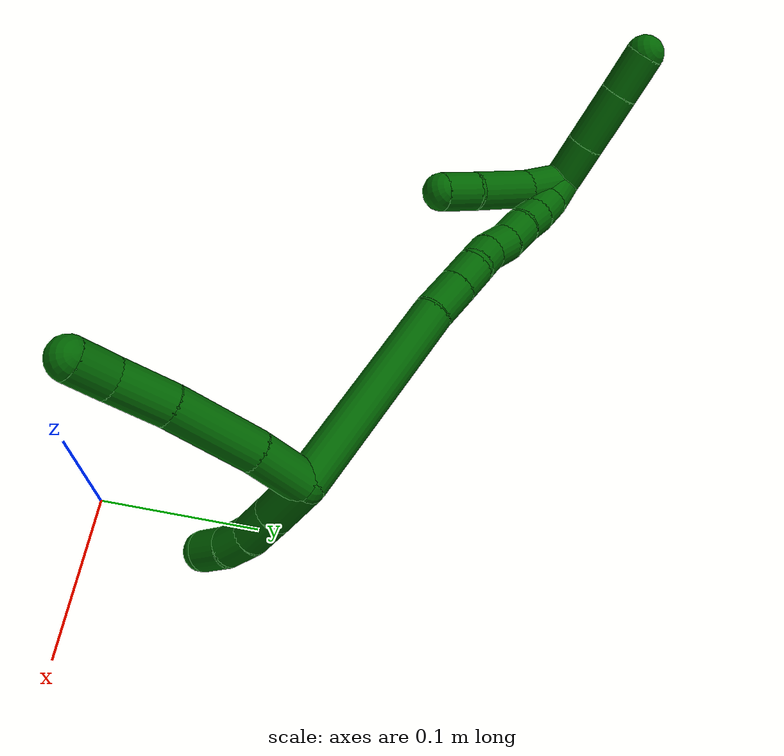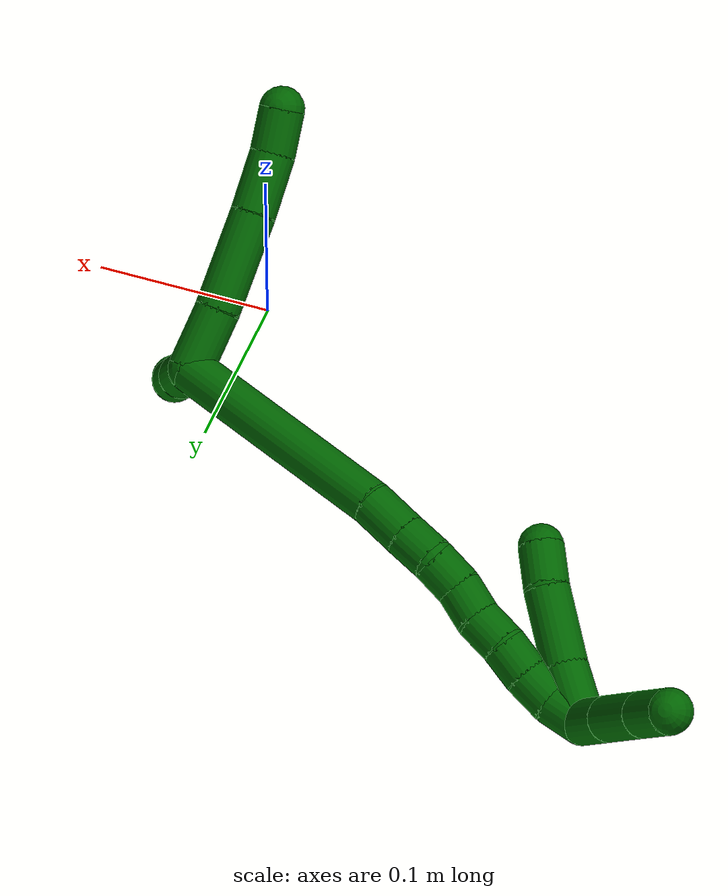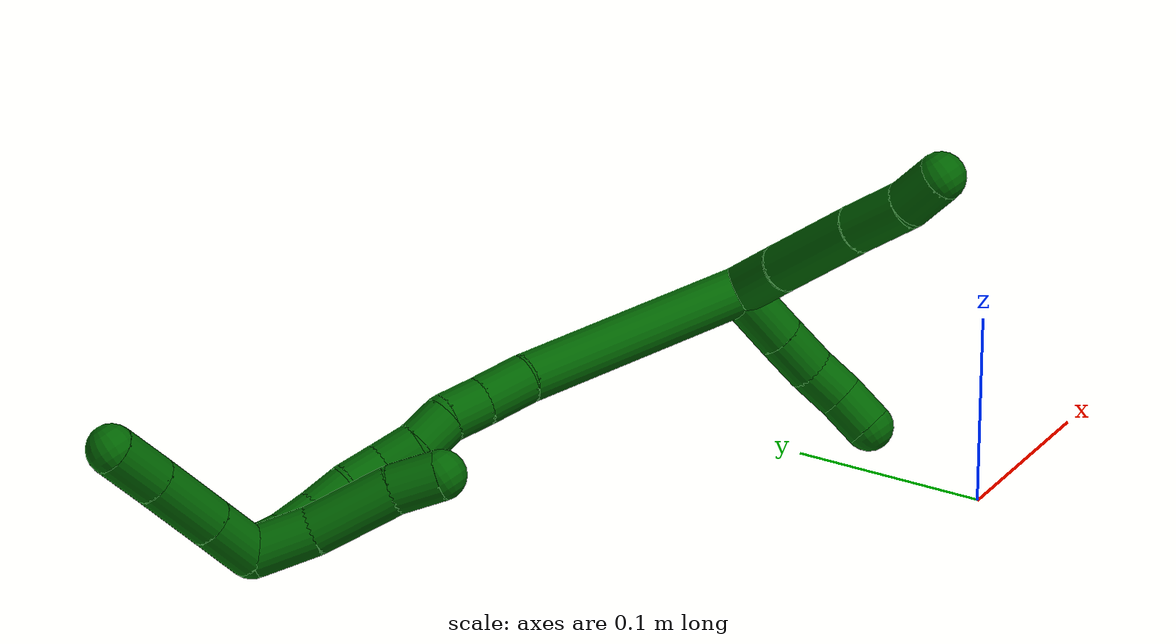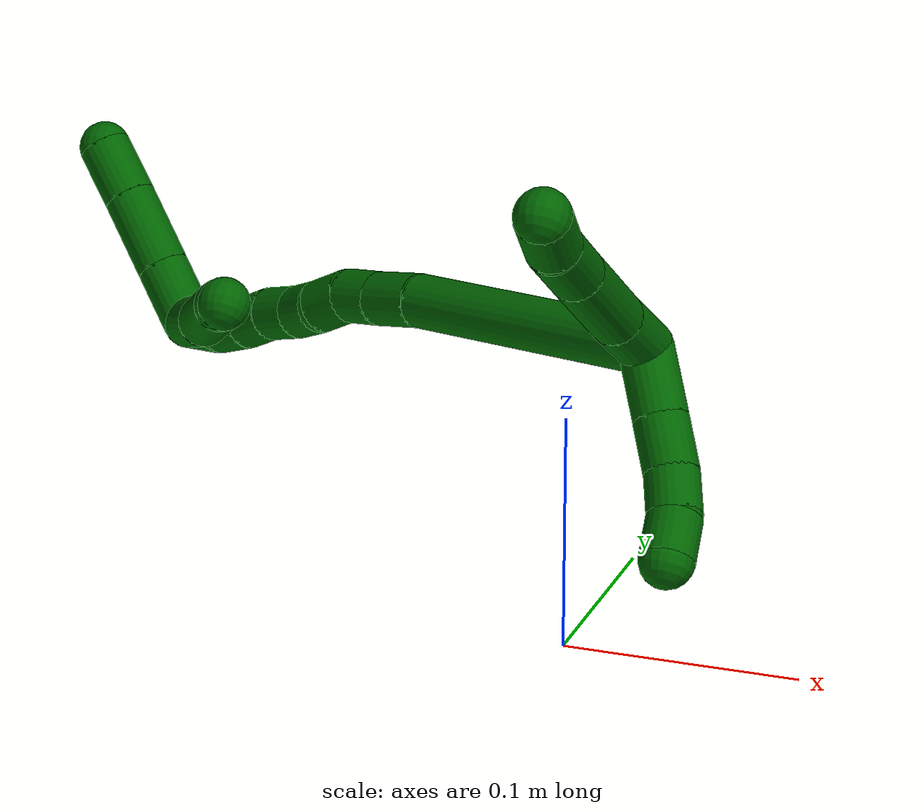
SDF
<sdf version="1.7">
 <world name="default">
  <model name="6">
   <static>0</static>
   <link name="6">
    <collision name="collision-cylinder-e_1_2_8">
     <pose>-0.002788 -0.017363 -0.000583 1.60438 -0.15912 -0.164531</pose>
     <geometry><cylinder><radius>0.0125</radius><length>0.035191</length></cylinder></geometry>
     <surface>
      <friction><ode><mu>1.16</mu><mu2>1.16</mu2><slip1>0</slip1><slip2>0</slip2></ode></friction>
      <contact><ode><kp>1e+06</kp><kd>1</kd><max_vel>0</max_vel><min_depth>0.001</min_depth></ode></contact>
     </surface>
    </collision>
    <visual name="visual-cylinder-e_1_2_8">
     <pose>-0.002788 -0.017363 -0.000583 1.60438 -0.15912 -0.164531</pose>
     <geometry><cylinder><radius>0.0125</radius><length>0.035191</length></cylinder></geometry>
     <material><ambient>0 0.392157 0.003922 1</ambient></material>
    </visual>
    <collision name="collision-cylinder-e_2_8_9">
     <pose>-0.007793 -0.062222 -0.00247 1.61818 -0.080369 -0.084265</pose>
     <geometry><cylinder><radius>0.0125</radius><length>0.05523</length></cylinder></geometry>
     <surface>
      <friction><ode><mu>1.16</mu><mu2>1.16</mu2><slip1>0</slip1><slip2>0</slip2></ode></friction>
      <contact><ode><kp>1e+06</kp><kd>1</kd><max_vel>0</max_vel><min_depth>0.001</min_depth></ode></contact>
     </surface>
    </collision>
    <visual name="visual-cylinder-e_2_8_9">
     <pose>-0.007793 -0.062222 -0.00247 1.61818 -0.080369 -0.084265</pose>
     <geometry><cylinder><radius>0.0125</radius><length>0.05523</length></cylinder></geometry>
     <material><ambient>0 0.392157 0.003922 1</ambient></material>
    </visual>
    <collision name="collision-cylinder-e_3_9_10">
     <pose>-0.010455 -0.106863 -0.005148 1.65076 -0.025869 -0.028024</pose>
     <geometry><cylinder><radius>0.0125</radius><length>0.034413</length></cylinder></geometry>
     <surface>
      <friction><ode><mu>1.16</mu><mu2>1.16</mu2><slip1>0</slip1><slip2>0</slip2></ode></friction>
      <contact><ode><kp>1e+06</kp><kd>1</kd><max_vel>0</max_vel><min_depth>0.001</min_depth></ode></contact>
     </surface>
    </collision>
    <visual name="visual-cylinder-e_3_9_10">
     <pose>-0.010455 -0.106863 -0.005148 1.65076 -0.025869 -0.028024</pose>
     <geometry><cylinder><radius>0.0125</radius><length>0.034413</length></cylinder></geometry>
     <material><ambient>0 0.392157 0.003922 1</ambient></material>
    </visual>
    <collision name="collision-cylinder-e_4_10_6">
     <pose>-0.010524 -0.136512 -0.00516 1.46227 0.029933 0.026849</pose>
     <geometry><cylinder><radius>0.0125</radius><length>0.025165</length></cylinder></geometry>
     <surface>
      <friction><ode><mu>1.16</mu><mu2>1.16</mu2><slip1>0</slip1><slip2>0</slip2></ode></friction>
      <contact><ode><kp>1e+06</kp><kd>1</kd><max_vel>0</max_vel><min_depth>0.001</min_depth></ode></contact>
     </surface>
    </collision>
    <visual name="visual-cylinder-e_4_10_6">
     <pose>-0.010524 -0.136512 -0.00516 1.46227 0.029933 0.026849</pose>
     <geometry><cylinder><radius>0.0125</radius><length>0.025165</length></cylinder></geometry>
     <material><ambient>0 0.392157 0.003922 1</ambient></material>
    </visual>
    <collision name="collision-cylinder-e_1_2_11">
     <pose>0.006447 0.001932 -0.015195 -3.01515 0.39839 -2.53384</pose>
     <geometry><cylinder><radius>0.0125</radius><length>0.033237</length></cylinder></geometry>
     <surface>
      <friction><ode><mu>1.16</mu><mu2>1.16</mu2><slip1>0</slip1><slip2>0</slip2></ode></friction>
      <contact><ode><kp>1e+06</kp><kd>1</kd><max_vel>0</max_vel><min_depth>0.001</min_depth></ode></contact>
     </surface>
    </collision>
    <visual name="visual-cylinder-e_1_2_11">
     <pose>0.006447 0.001932 -0.015195 -3.01515 0.39839 -2.53384</pose>
     <geometry><cylinder><radius>0.0125</radius><length>0.033237</length></cylinder></geometry>
     <material><ambient>0 0.392157 0.003922 1</ambient></material>
    </visual>
    <collision name="collision-cylinder-e_2_11_12">
     <pose>0.017704 0.005048 -0.041766 -3.0378 0.398084 -2.63754</pose>
     <geometry><cylinder><radius>0.0125</radius><length>0.024815</length></cylinder></geometry>
     <surface>
      <friction><ode><mu>1.16</mu><mu2>1.16</mu2><slip1>0</slip1><slip2>0</slip2></ode></friction>
      <contact><ode><kp>1e+06</kp><kd>1</kd><max_vel>0</max_vel><min_depth>0.001</min_depth></ode></contact>
     </surface>
    </collision>
    <visual name="visual-cylinder-e_2_11_12">
     <pose>0.017704 0.005048 -0.041766 -3.0378 0.398084 -2.63754</pose>
     <geometry><cylinder><radius>0.0125</radius><length>0.024815</length></cylinder></geometry>
     <material><ambient>0 0.392157 0.003922 1</ambient></material>
    </visual>
    <collision name="collision-cylinder-e_3_12_13">
     <pose>0.025614 0.00541 -0.063078 3.05891 0.301465 2.60982</pose>
     <geometry><cylinder><radius>0.0125</radius><length>0.020884</length></cylinder></geometry>
     <surface>
      <friction><ode><mu>1.16</mu><mu2>1.16</mu2><slip1>0</slip1><slip2>0</slip2></ode></friction>
      <contact><ode><kp>1e+06</kp><kd>1</kd><max_vel>0</max_vel><min_depth>0.001</min_depth></ode></contact>
     </surface>
    </collision>
    <visual name="visual-cylinder-e_3_12_13">
     <pose>0.025614 0.00541 -0.063078 3.05891 0.301465 2.60982</pose>
     <geometry><cylinder><radius>0.0125</radius><length>0.020884</length></cylinder></geometry>
     <material><ambient>0 0.392157 0.003922 1</ambient></material>
    </visual>
    <collision name="collision-cylinder-e_4_13_5">
     <pose>0.029617 0.00299 -0.083386 2.9889 0.085783 1.02261</pose>
     <geometry><cylinder><radius>0.0125</radius><length>0.021064</length></cylinder></geometry>
     <surface>
      <friction><ode><mu>1.16</mu><mu2>1.16</mu2><slip1>0</slip1><slip2>0</slip2></ode></friction>
      <contact><ode><kp>1e+06</kp><kd>1</kd><max_vel>0</max_vel><min_depth>0.001</min_depth></ode></contact>
     </surface>
    </collision>
    <visual name="visual-cylinder-e_4_13_5">
     <pose>0.029617 0.00299 -0.083386 2.9889 0.085783 1.02261</pose>
     <geometry><cylinder><radius>0.0125</radius><length>0.021064</length></cylinder></geometry>
     <material><ambient>0 0.392157 0.003922 1</ambient></material>
    </visual>
    <collision name="collision-cylinder-e_1_2_14">
     <pose>-0.06158 0.022424 0.011494 -1.09715 -1.1824 0.778632</pose>
     <geometry><cylinder><radius>0.0125</radius><length>0.133072</length></cylinder></geometry>
     <surface>
      <friction><ode><mu>1.16</mu><mu2>1.16</mu2><slip1>0</slip1><slip2>0</slip2></ode></friction>
      <contact><ode><kp>1e+06</kp><kd>1</kd><max_vel>0</max_vel><min_depth>0.001</min_depth></ode></contact>
     </surface>
    </collision>
    <visual name="visual-cylinder-e_1_2_14">
     <pose>-0.06158 0.022424 0.011494 -1.09715 -1.1824 0.778632</pose>
     <geometry><cylinder><radius>0.0125</radius><length>0.133072</length></cylinder></geometry>
     <material><ambient>0 0.392157 0.003922 1</ambient></material>
    </visual>
    <collision name="collision-cylinder-e_2_14_15">
     <pose>-0.134855 0.050791 0.024297 -1.35398 -1.09094 0.907601</pose>
     <geometry><cylinder><radius>0.0125</radius><length>0.026367</length></cylinder></geometry>
     <surface>
      <friction><ode><mu>1.16</mu><mu2>1.16</mu2><slip1>0</slip1><slip2>0</slip2></ode></friction>
      <contact><ode><kp>1e+06</kp><kd>1</kd><max_vel>0</max_vel><min_depth>0.001</min_depth></ode></contact>
     </surface>
    </collision>
    <visual name="visual-cylinder-e_2_14_15">
     <pose>-0.134855 0.050791 0.024297 -1.35398 -1.09094 0.907601</pose>
     <geometry><cylinder><radius>0.0125</radius><length>0.026367</length></cylinder></geometry>
     <material><ambient>0 0.392157 0.003922 1</ambient></material>
    </visual>
    <collision name="collision-cylinder-e_3_15_16">
     <pose>-0.155728 0.061133 0.026874 -1.29012 -1.1082 0.871464</pose>
     <geometry><cylinder><radius>0.0125</radius><length>0.020514</length></cylinder></geometry>
     <surface>
      <friction><ode><mu>1.16</mu><mu2>1.16</mu2><slip1>0</slip1><slip2>0</slip2></ode></friction>
      <contact><ode><kp>1e+06</kp><kd>1</kd><max_vel>0</max_vel><min_depth>0.001</min_depth></ode></contact>
     </surface>
    </collision>
    <visual name="visual-cylinder-e_3_15_16">
     <pose>-0.155728 0.061133 0.026874 -1.29012 -1.1082 0.871464</pose>
     <geometry><cylinder><radius>0.0125</radius><length>0.020514</length></cylinder></geometry>
     <material><ambient>0 0.392157 0.003922 1</ambient></material>
    </visual>
    <collision name="collision-cylinder-e_4_16_17">
     <pose>-0.17324 0.070781 0.026361 -1.89783 -0.983779 1.28388</pose>
     <geometry><cylinder><radius>0.0125</radius><length>0.020015</length></cylinder></geometry>
     <surface>
      <friction><ode><mu>1.16</mu><mu2>1.16</mu2><slip1>0</slip1><slip2>0</slip2></ode></friction>
      <contact><ode><kp>1e+06</kp><kd>1</kd><max_vel>0</max_vel><min_depth>0.001</min_depth></ode></contact>
     </surface>
    </collision>
    <visual name="visual-cylinder-e_4_16_17">
     <pose>-0.17324 0.070781 0.026361 -1.89783 -0.983779 1.28388</pose>
     <geometry><cylinder><radius>0.0125</radius><length>0.020015</length></cylinder></geometry>
     <material><ambient>0 0.392157 0.003922 1</ambient></material>
    </visual>
    <collision name="collision-cylinder-e_5_17_18">
     <pose>-0.188999 0.082724 0.024852 -1.53023 -0.836909 0.807186</pose>
     <geometry><cylinder><radius>0.0125</radius><length>0.020004</length></cylinder></geometry>
     <surface>
      <friction><ode><mu>1.16</mu><mu2>1.16</mu2><slip1>0</slip1><slip2>0</slip2></ode></friction>
      <contact><ode><kp>1e+06</kp><kd>1</kd><max_vel>0</max_vel><min_depth>0.001</min_depth></ode></contact>
     </surface>
    </collision>
    <visual name="visual-cylinder-e_5_17_18">
     <pose>-0.188999 0.082724 0.024852 -1.53023 -0.836909 0.807186</pose>
     <geometry><cylinder><radius>0.0125</radius><length>0.020004</length></cylinder></geometry>
     <material><ambient>0 0.392157 0.003922 1</ambient></material>
    </visual>
    <collision name="collision-cylinder-e_6_18_19">
     <pose>-0.205069 0.094437 0.025499 -1.49622 -1.04334 0.980079</pose>
     <geometry><cylinder><radius>0.0125</radius><length>0.020003</length></cylinder></geometry>
     <surface>
      <friction><ode><mu>1.16</mu><mu2>1.16</mu2><slip1>0</slip1><slip2>0</slip2></ode></friction>
      <contact><ode><kp>1e+06</kp><kd>1</kd><max_vel>0</max_vel><min_depth>0.001</min_depth></ode></contact>
     </surface>
    </collision>
    <visual name="visual-cylinder-e_6_18_19">
     <pose>-0.205069 0.094437 0.025499 -1.49622 -1.04334 0.980079</pose>
     <geometry><cylinder><radius>0.0125</radius><length>0.020003</length></cylinder></geometry>
     <material><ambient>0 0.392157 0.003922 1</ambient></material>
    </visual>
    <collision name="collision-cylinder-e_7_19_20">
     <pose>-0.221599 0.105537 0.024922 -1.72616 -0.908237 1.03697</pose>
     <geometry><cylinder><radius>0.0125</radius><length>0.020009</length></cylinder></geometry>
     <surface>
      <friction><ode><mu>1.16</mu><mu2>1.16</mu2><slip1>0</slip1><slip2>0</slip2></ode></friction>
      <contact><ode><kp>1e+06</kp><kd>1</kd><max_vel>0</max_vel><min_depth>0.001</min_depth></ode></contact>
     </surface>
    </collision>
    <visual name="visual-cylinder-e_7_19_20">
     <pose>-0.221599 0.105537 0.024922 -1.72616 -0.908237 1.03697</pose>
     <geometry><cylinder><radius>0.0125</radius><length>0.020009</length></cylinder></geometry>
     <material><ambient>0 0.392157 0.003922 1</ambient></material>
    </visual>
    <collision name="collision-cylinder-e_8_20_21">
     <pose>-0.238105 0.11668 0.023545 -1.65453 -1.03814 1.11184</pose>
     <geometry><cylinder><radius>0.0125</radius><length>0.020008</length></cylinder></geometry>
     <surface>
      <friction><ode><mu>1.16</mu><mu2>1.16</mu2><slip1>0</slip1><slip2>0</slip2></ode></friction>
      <contact><ode><kp>1e+06</kp><kd>1</kd><max_vel>0</max_vel><min_depth>0.001</min_depth></ode></contact>
     </surface>
    </collision>
    <visual name="visual-cylinder-e_8_20_21">
     <pose>-0.238105 0.11668 0.023545 -1.65453 -1.03814 1.11184</pose>
     <geometry><cylinder><radius>0.0125</radius><length>0.020008</length></cylinder></geometry>
     <material><ambient>0 0.392157 0.003922 1</ambient></material>
    </visual>
    <collision name="collision-cylinder-e_9_21_1">
     <pose>-0.256186 0.124735 0.024372 -1.17455 -1.24057 0.887674</pose>
     <geometry><cylinder><radius>0.0125</radius><length>0.020007</length></cylinder></geometry>
     <surface>
      <friction><ode><mu>1.16</mu><mu2>1.16</mu2><slip1>0</slip1><slip2>0</slip2></ode></friction>
      <contact><ode><kp>1e+06</kp><kd>1</kd><max_vel>0</max_vel><min_depth>0.001</min_depth></ode></contact>
     </surface>
    </collision>
    <visual name="visual-cylinder-e_9_21_1">
     <pose>-0.256186 0.124735 0.024372 -1.17455 -1.24057 0.887674</pose>
     <geometry><cylinder><radius>0.0125</radius><length>0.020007</length></cylinder></geometry>
     <material><ambient>0 0.392157 0.003922 1</ambient></material>
    </visual>
    <collision name="collision-cylinder-e_1_1_22">
     <pose>-0.274838 0.124991 0.037587 0.224836 -0.642686 -0.075125</pose>
     <geometry><cylinder><radius>0.0125</radius><length>0.030663</length></cylinder></geometry>
     <surface>
      <friction><ode><mu>1.16</mu><mu2>1.16</mu2><slip1>0</slip1><slip2>0</slip2></ode></friction>
      <contact><ode><kp>1e+06</kp><kd>1</kd><max_vel>0</max_vel><min_depth>0.001</min_depth></ode></contact>
     </surface>
    </collision>
    <visual name="visual-cylinder-e_1_1_22">
     <pose>-0.274838 0.124991 0.037587 0.224836 -0.642686 -0.075125</pose>
     <geometry><cylinder><radius>0.0125</radius><length>0.030663</length></cylinder></geometry>
     <material><ambient>0 0.392157 0.003922 1</ambient></material>
    </visual>
    <collision name="collision-cylinder-e_2_22_23">
     <pose>-0.295971 0.118741 0.065058 0.22287 -0.644298 -0.074663</pose>
     <geometry><cylinder><radius>0.0125</radius><length>0.039773</length></cylinder></geometry>
     <surface>
      <friction><ode><mu>1.16</mu><mu2>1.16</mu2><slip1>0</slip1><slip2>0</slip2></ode></friction>
      <contact><ode><kp>1e+06</kp><kd>1</kd><max_vel>0</max_vel><min_depth>0.001</min_depth></ode></contact>
     </surface>
    </collision>
    <visual name="visual-cylinder-e_2_22_23">
     <pose>-0.295971 0.118741 0.065058 0.22287 -0.644298 -0.074663</pose>
     <geometry><cylinder><radius>0.0125</radius><length>0.039773</length></cylinder></geometry>
     <material><ambient>0 0.392157 0.003922 1</ambient></material>
    </visual>
    <collision name="collision-cylinder-e_3_23_4">
     <pose>-0.316965 0.112608 0.091956 0.225916 -0.658822 -0.077525</pose>
     <geometry><cylinder><radius>0.0125</radius><length>0.029564</length></cylinder></geometry>
     <surface>
      <friction><ode><mu>1.16</mu><mu2>1.16</mu2><slip1>0</slip1><slip2>0</slip2></ode></friction>
      <contact><ode><kp>1e+06</kp><kd>1</kd><max_vel>0</max_vel><min_depth>0.001</min_depth></ode></contact>
     </surface>
    </collision>
    <visual name="visual-cylinder-e_3_23_4">
     <pose>-0.316965 0.112608 0.091956 0.225916 -0.658822 -0.077525</pose>
     <geometry><cylinder><radius>0.0125</radius><length>0.029564</length></cylinder></geometry>
     <material><ambient>0 0.392157 0.003922 1</ambient></material>
    </visual>
    <collision name="collision-cylinder-e_1_1_24">
     <pose>-0.256602 0.115023 0.022088 1.84222 0.601336 0.775011</pose>
     <geometry><cylinder><radius>0.0125</radius><length>0.031984</length></cylinder></geometry>
     <surface>
      <friction><ode><mu>1.16</mu><mu2>1.16</mu2><slip1>0</slip1><slip2>0</slip2></ode></friction>
      <contact><ode><kp>1e+06</kp><kd>1</kd><max_vel>0</max_vel><min_depth>0.001</min_depth></ode></contact>
     </surface>
    </collision>
    <visual name="visual-cylinder-e_1_1_24">
     <pose>-0.256602 0.115023 0.022088 1.84222 0.601336 0.775011</pose>
     <geometry><cylinder><radius>0.0125</radius><length>0.031984</length></cylinder></geometry>
     <material><ambient>0 0.392157 0.003922 1</ambient></material>
    </visual>
    <collision name="collision-cylinder-e_2_24_25">
     <pose>-0.236605 0.083497 0.016425 1.68339 0.524096 0.583378</pose>
     <geometry><cylinder><radius>0.0125</radius><length>0.04376</length></cylinder></geometry>
     <surface>
      <friction><ode><mu>1.16</mu><mu2>1.16</mu2><slip1>0</slip1><slip2>0</slip2></ode></friction>
      <contact><ode><kp>1e+06</kp><kd>1</kd><max_vel>0</max_vel><min_depth>0.001</min_depth></ode></contact>
     </surface>
    </collision>
    <visual name="visual-cylinder-e_2_24_25">
     <pose>-0.236605 0.083497 0.016425 1.68339 0.524096 0.583378</pose>
     <geometry><cylinder><radius>0.0125</radius><length>0.04376</length></cylinder></geometry>
     <material><ambient>0 0.392157 0.003922 1</ambient></material>
    </visual>
    <collision name="collision-cylinder-e_3_25_3">
     <pose>-0.220446 0.054187 0.011136 1.86348 0.444008 0.589822</pose>
     <geometry><cylinder><radius>0.0125</radius><length>0.024257</length></cylinder></geometry>
     <surface>
      <friction><ode><mu>1.16</mu><mu2>1.16</mu2><slip1>0</slip1><slip2>0</slip2></ode></friction>
      <contact><ode><kp>1e+06</kp><kd>1</kd><max_vel>0</max_vel><min_depth>0.001</min_depth></ode></contact>
     </surface>
    </collision>
    <visual name="visual-cylinder-e_3_25_3">
     <pose>-0.220446 0.054187 0.011136 1.86348 0.444008 0.589822</pose>
     <geometry><cylinder><radius>0.0125</radius><length>0.024257</length></cylinder></geometry>
     <material><ambient>0 0.392157 0.003922 1</ambient></material>
    </visual>
    <collision name="collision-sphere-3">
     <pose>-0.215236 0.0437 0.007976 0 -0 0</pose>
     <geometry><sphere><radius>0.0125</radius></sphere></geometry>
     <surface>
      <friction><ode><mu>1.16</mu><mu2>1.16</mu2><slip1>0</slip1><slip2>0</slip2></ode></friction>
      <contact><ode><kp>1e+06</kp><kd>1</kd><max_vel>0</max_vel><min_depth>0.001</min_depth></ode></contact>
     </surface>
    </collision>
    <visual name="visual-sphere-3">
     <pose>-0.215236 0.0437 0.007976 0 -0 0</pose>
     <geometry><sphere><radius>0.0125</radius></sphere></geometry>
     <material><ambient>0 0.392157 0.003922 1</ambient></material>
    </visual>
    <collision name="collision-sphere-25">
     <pose>-0.225656 0.064673 0.014296 0 -0 0</pose>
     <geometry><sphere><radius>0.0125</radius></sphere></geometry>
     <surface>
      <friction><ode><mu>1.16</mu><mu2>1.16</mu2><slip1>0</slip1><slip2>0</slip2></ode></friction>
      <contact><ode><kp>1e+06</kp><kd>1</kd><max_vel>0</max_vel><min_depth>0.001</min_depth></ode></contact>
     </surface>
    </collision>
    <visual name="visual-sphere-25">
     <pose>-0.225656 0.064673 0.014296 0 -0 0</pose>
     <geometry><sphere><radius>0.0125</radius></sphere></geometry>
     <material><ambient>0 0.392157 0.003922 1</ambient></material>
    </visual>
    <collision name="collision-sphere-24">
     <pose>-0.247554 0.10232 0.018553 0 -0 0</pose>
     <geometry><sphere><radius>0.0125</radius></sphere></geometry>
     <surface>
      <friction><ode><mu>1.16</mu><mu2>1.16</mu2><slip1>0</slip1><slip2>0</slip2></ode></friction>
      <contact><ode><kp>1e+06</kp><kd>1</kd><max_vel>0</max_vel><min_depth>0.001</min_depth></ode></contact>
     </surface>
    </collision>
    <visual name="visual-sphere-24">
     <pose>-0.247554 0.10232 0.018553 0 -0 0</pose>
     <geometry><sphere><radius>0.0125</radius></sphere></geometry>
     <material><ambient>0 0.392157 0.003922 1</ambient></material>
    </visual>
    <collision name="collision-sphere-4">
     <pose>-0.326015 0.10999 0.103347 0 -0 0</pose>
     <geometry><sphere><radius>0.0125</radius></sphere></geometry>
     <surface>
      <friction><ode><mu>1.16</mu><mu2>1.16</mu2><slip1>0</slip1><slip2>0</slip2></ode></friction>
      <contact><ode><kp>1e+06</kp><kd>1</kd><max_vel>0</max_vel><min_depth>0.001</min_depth></ode></contact>
     </surface>
    </collision>
    <visual name="visual-sphere-4">
     <pose>-0.326015 0.10999 0.103347 0 -0 0</pose>
     <geometry><sphere><radius>0.0125</radius></sphere></geometry>
     <material><ambient>0 0.392157 0.003922 1</ambient></material>
    </visual>
    <collision name="collision-sphere-23">
     <pose>-0.307916 0.115226 0.080564 0 -0 0</pose>
     <geometry><sphere><radius>0.0125</radius></sphere></geometry>
     <surface>
      <friction><ode><mu>1.16</mu><mu2>1.16</mu2><slip1>0</slip1><slip2>0</slip2></ode></friction>
      <contact><ode><kp>1e+06</kp><kd>1</kd><max_vel>0</max_vel><min_depth>0.001</min_depth></ode></contact>
     </surface>
    </collision>
    <visual name="visual-sphere-23">
     <pose>-0.307916 0.115226 0.080564 0 -0 0</pose>
     <geometry><sphere><radius>0.0125</radius></sphere></geometry>
     <material><ambient>0 0.392157 0.003922 1</ambient></material>
    </visual>
    <collision name="collision-sphere-22">
     <pose>-0.284027 0.122255 0.049551 0 -0 0</pose>
     <geometry><sphere><radius>0.0125</radius></sphere></geometry>
     <surface>
      <friction><ode><mu>1.16</mu><mu2>1.16</mu2><slip1>0</slip1><slip2>0</slip2></ode></friction>
      <contact><ode><kp>1e+06</kp><kd>1</kd><max_vel>0</max_vel><min_depth>0.001</min_depth></ode></contact>
     </surface>
    </collision>
    <visual name="visual-sphere-22">
     <pose>-0.284027 0.122255 0.049551 0 -0 0</pose>
     <geometry><sphere><radius>0.0125</radius></sphere></geometry>
     <material><ambient>0 0.392157 0.003922 1</ambient></material>
    </visual>
    <collision name="collision-sphere-1">
     <pose>-0.265649 0.127727 0.025624 0 -0 0</pose>
     <geometry><sphere><radius>0.0125</radius></sphere></geometry>
     <surface>
      <friction><ode><mu>1.16</mu><mu2>1.16</mu2><slip1>0</slip1><slip2>0</slip2></ode></friction>
      <contact><ode><kp>1e+06</kp><kd>1</kd><max_vel>0</max_vel><min_depth>0.001</min_depth></ode></contact>
     </surface>
    </collision>
    <visual name="visual-sphere-1">
     <pose>-0.265649 0.127727 0.025624 0 -0 0</pose>
     <geometry><sphere><radius>0.0125</radius></sphere></geometry>
     <material><ambient>0 0.392157 0.003922 1</ambient></material>
    </visual>
    <collision name="collision-sphere-21">
     <pose>-0.246723 0.121742 0.02312 0 -0 0</pose>
     <geometry><sphere><radius>0.0125</radius></sphere></geometry>
     <surface>
      <friction><ode><mu>1.16</mu><mu2>1.16</mu2><slip1>0</slip1><slip2>0</slip2></ode></friction>
      <contact><ode><kp>1e+06</kp><kd>1</kd><max_vel>0</max_vel><min_depth>0.001</min_depth></ode></contact>
     </surface>
    </collision>
    <visual name="visual-sphere-21">
     <pose>-0.246723 0.121742 0.02312 0 -0 0</pose>
     <geometry><sphere><radius>0.0125</radius></sphere></geometry>
     <material><ambient>0 0.392157 0.003922 1</ambient></material>
    </visual>
    <collision name="collision-sphere-11">
     <pose>0.012894 0.003863 -0.03039 0 -0 0</pose>
     <geometry><sphere><radius>0.0125</radius></sphere></geometry>
     <surface>
      <friction><ode><mu>1.16</mu><mu2>1.16</mu2><slip1>0</slip1><slip2>0</slip2></ode></friction>
      <contact><ode><kp>1e+06</kp><kd>1</kd><max_vel>0</max_vel><min_depth>0.001</min_depth></ode></contact>
     </surface>
    </collision>
    <visual name="visual-sphere-11">
     <pose>0.012894 0.003863 -0.03039 0 -0 0</pose>
     <geometry><sphere><radius>0.0125</radius></sphere></geometry>
     <material><ambient>0 0.392157 0.003922 1</ambient></material>
    </visual>
    <collision name="collision-sphere-6">
     <pose>-0.010147 -0.149015 -0.003797 0 -0 0</pose>
     <geometry><sphere><radius>0.0125</radius></sphere></geometry>
     <surface>
      <friction><ode><mu>1.16</mu><mu2>1.16</mu2><slip1>0</slip1><slip2>0</slip2></ode></friction>
      <contact><ode><kp>1e+06</kp><kd>1</kd><max_vel>0</max_vel><min_depth>0.001</min_depth></ode></contact>
     </surface>
    </collision>
    <visual name="visual-sphere-6">
     <pose>-0.010147 -0.149015 -0.003797 0 -0 0</pose>
     <geometry><sphere><radius>0.0125</radius></sphere></geometry>
     <material><ambient>0 0.392157 0.003922 1</ambient></material>
    </visual>
    <collision name="collision-sphere-10">
     <pose>-0.0109 -0.124009 -0.006522 0 -0 0</pose>
     <geometry><sphere><radius>0.0125</radius></sphere></geometry>
     <surface>
      <friction><ode><mu>1.16</mu><mu2>1.16</mu2><slip1>0</slip1><slip2>0</slip2></ode></friction>
      <contact><ode><kp>1e+06</kp><kd>1</kd><max_vel>0</max_vel><min_depth>0.001</min_depth></ode></contact>
     </surface>
    </collision>
    <visual name="visual-sphere-10">
     <pose>-0.0109 -0.124009 -0.006522 0 -0 0</pose>
     <geometry><sphere><radius>0.0125</radius></sphere></geometry>
     <material><ambient>0 0.392157 0.003922 1</ambient></material>
    </visual>
    <collision name="collision-sphere-9">
     <pose>-0.01001 -0.089717 -0.003774 0 -0 0</pose>
     <geometry><sphere><radius>0.0125</radius></sphere></geometry>
     <surface>
      <friction><ode><mu>1.16</mu><mu2>1.16</mu2><slip1>0</slip1><slip2>0</slip2></ode></friction>
      <contact><ode><kp>1e+06</kp><kd>1</kd><max_vel>0</max_vel><min_depth>0.001</min_depth></ode></contact>
     </surface>
    </collision>
    <visual name="visual-sphere-9">
     <pose>-0.01001 -0.089717 -0.003774 0 -0 0</pose>
     <geometry><sphere><radius>0.0125</radius></sphere></geometry>
     <material><ambient>0 0.392157 0.003922 1</ambient></material>
    </visual>
    <collision name="collision-sphere-2">
     <geometry><sphere><radius>0.0125</radius></sphere></geometry>
     <surface>
      <friction><ode><mu>1.16</mu><mu2>1.16</mu2><slip1>0</slip1><slip2>0</slip2></ode></friction>
      <contact><ode><kp>1e+06</kp><kd>1</kd><max_vel>0</max_vel><min_depth>0.001</min_depth></ode></contact>
     </surface>
    </collision>
    <visual name="visual-sphere-2">
     <geometry><sphere><radius>0.0125</radius></sphere></geometry>
     <material><ambient>0 0.392157 0.003922 1</ambient></material>
    </visual>
    <collision name="collision-sphere-19">
     <pose>-0.213711 0.099457 0.025874 0 -0 0</pose>
     <geometry><sphere><radius>0.0125</radius></sphere></geometry>
     <surface>
      <friction><ode><mu>1.16</mu><mu2>1.16</mu2><slip1>0</slip1><slip2>0</slip2></ode></friction>
      <contact><ode><kp>1e+06</kp><kd>1</kd><max_vel>0</max_vel><min_depth>0.001</min_depth></ode></contact>
     </surface>
    </collision>
    <visual name="visual-sphere-19">
     <pose>-0.213711 0.099457 0.025874 0 -0 0</pose>
     <geometry><sphere><radius>0.0125</radius></sphere></geometry>
     <material><ambient>0 0.392157 0.003922 1</ambient></material>
    </visual>
    <collision name="collision-sphere-8">
     <pose>-0.005576 -0.034727 -0.001167 0 -0 0</pose>
     <geometry><sphere><radius>0.0125</radius></sphere></geometry>
     <surface>
      <friction><ode><mu>1.16</mu><mu2>1.16</mu2><slip1>0</slip1><slip2>0</slip2></ode></friction>
      <contact><ode><kp>1e+06</kp><kd>1</kd><max_vel>0</max_vel><min_depth>0.001</min_depth></ode></contact>
     </surface>
    </collision>
    <visual name="visual-sphere-8">
     <pose>-0.005576 -0.034727 -0.001167 0 -0 0</pose>
     <geometry><sphere><radius>0.0125</radius></sphere></geometry>
     <material><ambient>0 0.392157 0.003922 1</ambient></material>
    </visual>
    <collision name="collision-sphere-12">
     <pose>0.022514 0.006233 -0.053141 0 -0 0</pose>
     <geometry><sphere><radius>0.0125</radius></sphere></geometry>
     <surface>
      <friction><ode><mu>1.16</mu><mu2>1.16</mu2><slip1>0</slip1><slip2>0</slip2></ode></friction>
      <contact><ode><kp>1e+06</kp><kd>1</kd><max_vel>0</max_vel><min_depth>0.001</min_depth></ode></contact>
     </surface>
    </collision>
    <visual name="visual-sphere-12">
     <pose>0.022514 0.006233 -0.053141 0 -0 0</pose>
     <geometry><sphere><radius>0.0125</radius></sphere></geometry>
     <material><ambient>0 0.392157 0.003922 1</ambient></material>
    </visual>
    <collision name="collision-sphere-13">
     <pose>0.028714 0.004586 -0.073016 0 -0 0</pose>
     <geometry><sphere><radius>0.0125</radius></sphere></geometry>
     <surface>
      <friction><ode><mu>1.16</mu><mu2>1.16</mu2><slip1>0</slip1><slip2>0</slip2></ode></friction>
      <contact><ode><kp>1e+06</kp><kd>1</kd><max_vel>0</max_vel><min_depth>0.001</min_depth></ode></contact>
     </surface>
    </collision>
    <visual name="visual-sphere-13">
     <pose>0.028714 0.004586 -0.073016 0 -0 0</pose>
     <geometry><sphere><radius>0.0125</radius></sphere></geometry>
     <material><ambient>0 0.392157 0.003922 1</ambient></material>
    </visual>
    <collision name="collision-sphere-5">
     <pose>0.030519 0.001394 -0.093757 0 -0 0</pose>
     <geometry><sphere><radius>0.0125</radius></sphere></geometry>
     <surface>
      <friction><ode><mu>1.16</mu><mu2>1.16</mu2><slip1>0</slip1><slip2>0</slip2></ode></friction>
      <contact><ode><kp>1e+06</kp><kd>1</kd><max_vel>0</max_vel><min_depth>0.001</min_depth></ode></contact>
     </surface>
    </collision>
    <visual name="visual-sphere-5">
     <pose>0.030519 0.001394 -0.093757 0 -0 0</pose>
     <geometry><sphere><radius>0.0125</radius></sphere></geometry>
     <material><ambient>0 0.392157 0.003922 1</ambient></material>
    </visual>
    <collision name="collision-sphere-14">
     <pose>-0.12316 0.044847 0.022987 0 -0 0</pose>
     <geometry><sphere><radius>0.0125</radius></sphere></geometry>
     <surface>
      <friction><ode><mu>1.16</mu><mu2>1.16</mu2><slip1>0</slip1><slip2>0</slip2></ode></friction>
      <contact><ode><kp>1e+06</kp><kd>1</kd><max_vel>0</max_vel><min_depth>0.001</min_depth></ode></contact>
     </surface>
    </collision>
    <visual name="visual-sphere-14">
     <pose>-0.12316 0.044847 0.022987 0 -0 0</pose>
     <geometry><sphere><radius>0.0125</radius></sphere></geometry>
     <material><ambient>0 0.392157 0.003922 1</ambient></material>
    </visual>
    <collision name="collision-sphere-15">
     <pose>-0.146549 0.056735 0.025606 0 -0 0</pose>
     <geometry><sphere><radius>0.0125</radius></sphere></geometry>
     <surface>
      <friction><ode><mu>1.16</mu><mu2>1.16</mu2><slip1>0</slip1><slip2>0</slip2></ode></friction>
      <contact><ode><kp>1e+06</kp><kd>1</kd><max_vel>0</max_vel><min_depth>0.001</min_depth></ode></contact>
     </surface>
    </collision>
    <visual name="visual-sphere-15">
     <pose>-0.146549 0.056735 0.025606 0 -0 0</pose>
     <geometry><sphere><radius>0.0125</radius></sphere></geometry>
     <material><ambient>0 0.392157 0.003922 1</ambient></material>
    </visual>
    <collision name="collision-sphere-16">
     <pose>-0.164907 0.065532 0.028142 0 -0 0</pose>
     <geometry><sphere><radius>0.0125</radius></sphere></geometry>
     <surface>
      <friction><ode><mu>1.16</mu><mu2>1.16</mu2><slip1>0</slip1><slip2>0</slip2></ode></friction>
      <contact><ode><kp>1e+06</kp><kd>1</kd><max_vel>0</max_vel><min_depth>0.001</min_depth></ode></contact>
     </surface>
    </collision>
    <visual name="visual-sphere-16">
     <pose>-0.164907 0.065532 0.028142 0 -0 0</pose>
     <geometry><sphere><radius>0.0125</radius></sphere></geometry>
     <material><ambient>0 0.392157 0.003922 1</ambient></material>
    </visual>
    <collision name="collision-sphere-17">
     <pose>-0.181572 0.07603 0.024581 0 -0 0</pose>
     <geometry><sphere><radius>0.0125</radius></sphere></geometry>
     <surface>
      <friction><ode><mu>1.16</mu><mu2>1.16</mu2><slip1>0</slip1><slip2>0</slip2></ode></friction>
      <contact><ode><kp>1e+06</kp><kd>1</kd><max_vel>0</max_vel><min_depth>0.001</min_depth></ode></contact>
     </surface>
    </collision>
    <visual name="visual-sphere-17">
     <pose>-0.181572 0.07603 0.024581 0 -0 0</pose>
     <geometry><sphere><radius>0.0125</radius></sphere></geometry>
     <material><ambient>0 0.392157 0.003922 1</ambient></material>
    </visual>
    <collision name="collision-sphere-18">
     <pose>-0.196426 0.089417 0.025124 0 -0 0</pose>
     <geometry><sphere><radius>0.0125</radius></sphere></geometry>
     <surface>
      <friction><ode><mu>1.16</mu><mu2>1.16</mu2><slip1>0</slip1><slip2>0</slip2></ode></friction>
      <contact><ode><kp>1e+06</kp><kd>1</kd><max_vel>0</max_vel><min_depth>0.001</min_depth></ode></contact>
     </surface>
    </collision>
    <visual name="visual-sphere-18">
     <pose>-0.196426 0.089417 0.025124 0 -0 0</pose>
     <geometry><sphere><radius>0.0125</radius></sphere></geometry>
     <material><ambient>0 0.392157 0.003922 1</ambient></material>
    </visual>
    <collision name="collision-sphere-20">
     <pose>-0.229487 0.111617 0.02397 0 -0 0</pose>
     <geometry><sphere><radius>0.0125</radius></sphere></geometry>
     <surface>
      <friction><ode><mu>1.16</mu><mu2>1.16</mu2><slip1>0</slip1><slip2>0</slip2></ode></friction>
      <contact><ode><kp>1e+06</kp><kd>1</kd><max_vel>0</max_vel><min_depth>0.001</min_depth></ode></contact>
     </surface>
    </collision>
    <visual name="visual-sphere-20">
     <pose>-0.229487 0.111617 0.02397 0 -0 0</pose>
     <geometry><sphere><radius>0.0125</radius></sphere></geometry>
     <material><ambient>0 0.392157 0.003922 1</ambient></material>
    </visual>
    <inertial>
     <pose>-0.124583 0.036288 0.011718 0 -0 0</pose>
     <mass>0.75</mass>
     <inertia>
      <ixx>0.000144</ixx>
      <ixy>0</ixy>
      <ixz>0</ixz>
      <iyy>0.000265</iyy>
      <iyz>0</iyz>
      <izz>0.000165</izz>
     </inertia>
    </inertial>
   </link>
   <pose>-0.00601 0.13319 0.085396 -0.700383 0.015622 -0.014214</pose>
  </model>
 </world>
</sdf>
